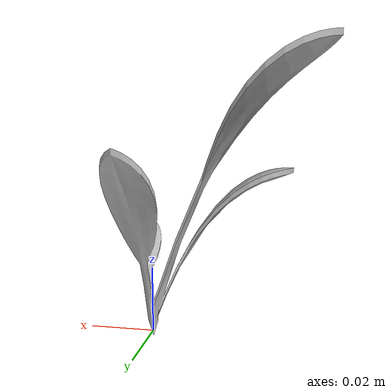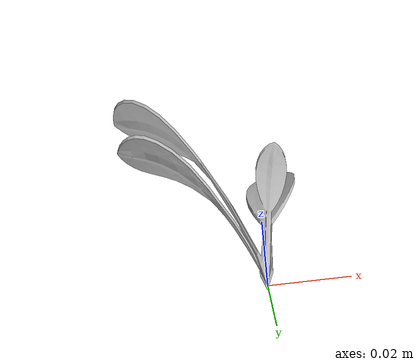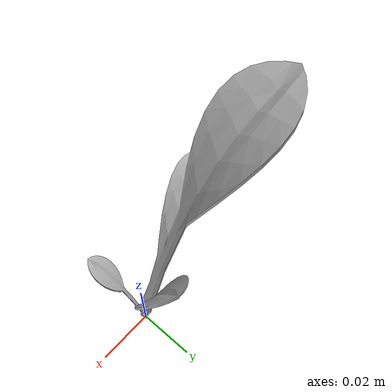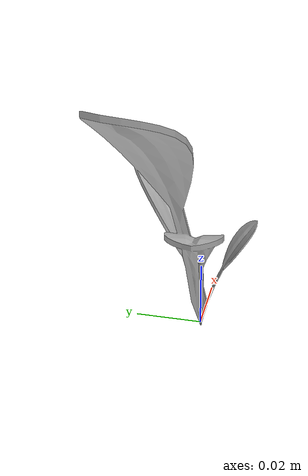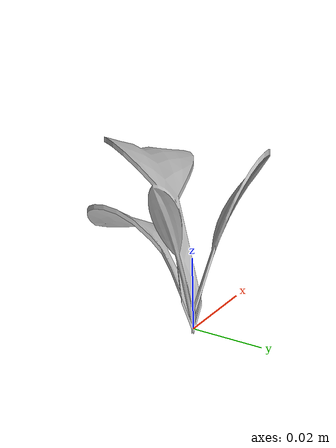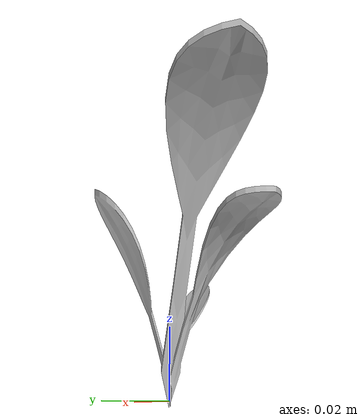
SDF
<sdf version="1.6">
  <model name="sugar_beet_22">
    <static>true</static>
    <link name="body">
      <visual name="visual">
        <geometry>
          <mesh>
            <uri>file:///sugar_beet_22/media/sugar_beet.dae</uri>
          </mesh>
        </geometry>
      </visual>
    </link>
  </model>
</sdf>
